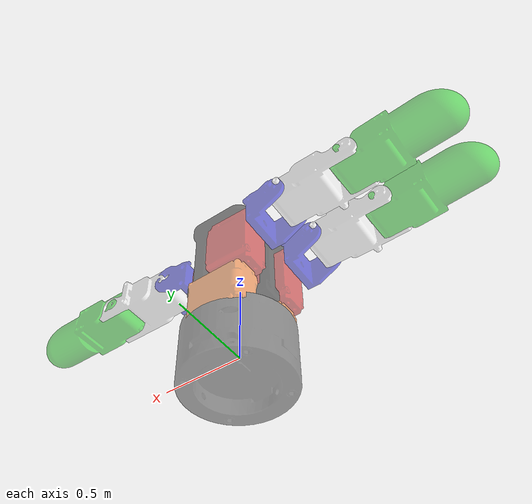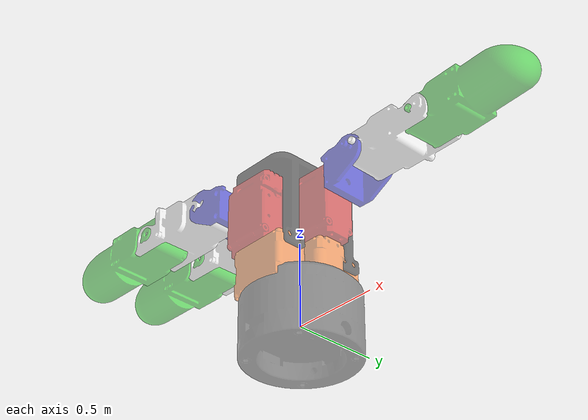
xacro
<?xml version="1.0"?>
<robot name="robot_hand" xmlns:xacro="http://www.ros.org/wiki/xacro">
  <!-- Import Rviz colors -->
  <xacro:include filename="$(find tesollo)/urdf/materials.xacro" />

  <xacro:property name="robot_base_radius" value="0.64"  />
  <xacro:property name="robot_base_length" value="0.405" />

  <xacro:property name="finger_link0_width" value="0.196"/>
  <xacro:property name="finger_link0_length" value="0.358" />
  <xacro:property name="finger_link0_height" value="0.284" />

  <xacro:property name="finger_link1_width" value="0.196" />
  <xacro:property name="finger_link1_length" value="0.284" />
  <xacro:property name="finger_link1_height" value="0.358" />

  <xacro:property name="finger_link3_width" value="0.196" />
  <xacro:property name="finger_link3_length" value="0.284" />
  <xacro:property name="finger_link3_height" value="0.358" />

  <xacro:property name="PI" value="3.14"/>

  <!-- Robot hand base-->
  <link name="base_link">
    <visual>
      <origin xyz="0 0 0" rpy="0 0 ${-1*PI/2}"/>
      <geometry>
        <mesh filename="../meshes/base.stl" scale="0.01 0.01 0.01"/>
      </geometry>
      <material name="grey"/>
    </visual>
  </link>

  <!-- finger_1 -->
  <joint name="finger_1_joint0" type="fixed">
    <origin xyz="${finger_link0_width/2} 0 ${finger_link0_height/2}" rpy="0 0 0" />
    <parent link="base_link"/>
    <child link="finger_1_link0"/>
    <axis xyz="0 0 1"/>
  </joint>

  <!-- motor 1 -->
  <link name="finger_1_link0">
    <visual>
      <origin xyz="0 0 ${finger_link0_height/2}" rpy="0 0 ${1*PI/2}"/>
      <geometry>
        <mesh filename="../meshes/finger0.stl" scale="0.01 0.01 0.01"/>
      </geometry>
      <material name="orange"/>
    </visual>
  </link>

  <joint name="finger_1_joint1" type="revolute">
    <origin xyz="0.07 0 ${finger_link1_length}" rpy="0 0 0" />
    <parent link="finger_1_link0"/>
    <child link="finger_1_link1"/>
    <axis xyz="0 0 1"/>
    <limit effort="1000" lower="-0.785" upper="0.785" velocity="5.027"/>
  </joint>

  <!-- motor 2 -->
  <link name="finger_1_link1">
    <visual>
      <origin xyz="0 0 ${finger_link1_height/2 + 0.04}" rpy="0 0 ${1*PI/2}"/>
      <geometry>
        <mesh filename="../meshes/finger1.stl" scale="0.01 0.01 0.01"/>
      </geometry>
      <material name="red"/>
    </visual>
  </link>

  <joint name="finger_1_joint2" type="revolute">
    <origin xyz="${finger_link1_width/2+0.025} +0.005 ${finger_link1_height-0.065}" rpy="0 ${1*PI/2} 0" />    <!-- add offset -->
    <parent link="finger_1_link1"/>
    <child link="finger_1_link2"/>
    <axis xyz="0 0 1"/>
    <limit effort="1000" lower="-1.57" upper="1.57" velocity="5.027"/>
  </joint>

  <!-- link -->
  <link name="finger_1_link2">
    <visual>
      <origin xyz="-0.05 -0.01 0.1" rpy="0 0 ${1*PI/2}"/> <!-- add offset -->
      <geometry>
        <mesh filename="../meshes/link.stl" scale="0.01 0.01 0.01"/>
      </geometry>
      <material name="blue"/>
    </visual>
  </link>

  <!-- motor 3 -->
  <joint name="finger_1_joint3" type="revolute">
    <origin xyz="-0.1 0 0.2" rpy="${1*PI/2} 0 0" />
    <parent link="finger_1_link2"/>
    <child link="finger_1_link3"/>
    <limit effort="1000" lower="0" upper="1.57" velocity="5.027"/>
    <axis xyz="0 0 1"/>
  </joint>

  <link name="finger_1_link3">
    <visual>
      <origin xyz="0 ${finger_link3_length/2} 0" rpy="${-1*PI/2} ${1*PI/2} 0"/>
      <geometry>
        <mesh filename="../meshes/finger2.stl" scale="0.01 0.01 0.01"/>
      </geometry>
      <material name="white"/>
    </visual>
  </link>

  <!-- motor 4 -->
  <joint name="finger_1_joint4" type="revolute">
    <origin xyz="0 ${finger_link3_height + 0.087} 0" rpy="0 0 0" />
    <parent link="finger_1_link3"/>
    <child link="finger_1_link4"/>
    <limit effort="1000" lower="0" upper="1.57" velocity="5.027"/>
    <axis xyz="0 0 1"/>
  </joint>

  <link name="finger_1_link4">
    <visual>
      <origin xyz="-0.01 0.22 -0.01" rpy="${-1*PI/2} ${1*PI/2} 0"/>
      <geometry>
        <mesh filename="../meshes/finger3.stl" scale="0.01 0.01 0.01"/>
      </geometry>
      <material name="green"/>
    </visual>
  </link>

  <!-- finger_2 -->
  <joint name="finger_2_joint0" type="fixed">
    <origin xyz="-0.05 ${-1*finger_link0_width} ${finger_link0_height/2}" rpy="0 0 ${PI}" />
    <parent link="base_link"/>
    <child link="finger_2_link0"/>
    <axis xyz="0 0 1"/>
  </joint>

  <link name="finger_2_link0">
    <visual>
      <origin xyz="0 0 ${finger_link0_height/2}" rpy="0 0 ${1*PI/2}"/>
      <geometry>
        <mesh filename="../meshes/finger0.stl" scale="0.01 0.01 0.01"/>
      </geometry>
      <material name="orange"/>
    </visual>
  </link>

  <joint name="finger_2_joint1" type="revolute">
    <origin xyz="0.07 0 ${finger_link1_length}" rpy="0 0 0" />
    <parent link="finger_2_link0"/>
    <child link="finger_2_link1"/>
    <axis xyz="0 0 1"/>
    <limit effort="1000" lower="0" upper="0.785" velocity="5.027"/>
  </joint>

  <!-- motor 2 -->
  <link name="finger_2_link1">
    <visual>
      <origin xyz="0 0 ${finger_link1_height/2 + 0.04}" rpy="0 0 ${1*PI/2}"/>
      <geometry>
        <mesh filename="../meshes/finger1.stl" scale="0.01 0.01 0.01"/>
      </geometry>
      <material name="red"/>
    </visual>
  </link>

  <joint name="finger_2_joint2" type="revolute">
    <origin xyz="${finger_link1_width/2+0.025} +0.005 ${finger_link1_height-0.065}" rpy="0 ${1*PI/2} 0" />    <!-- add offset -->
    <parent link="finger_2_link1"/>
    <child link="finger_2_link2"/>
    <axis xyz="0 0 1"/>
    <limit effort="1000" lower="-1.57" upper="1.57" velocity="5.027"/>
  </joint>

  <!-- link -->
  <link name="finger_2_link2">
    <visual>
      <origin xyz="-0.05 -0.01 0.1" rpy="0 0 ${1*PI/2}"/> <!-- add offset -->
      <geometry>
        <mesh filename="../meshes/link.stl" scale="0.01 0.01 0.01"/>
      </geometry>
      <material name="blue"/>
    </visual>
  </link>

  <!-- motor 3 -->
  <joint name="finger_2_joint3" type="revolute">
    <origin xyz="-0.1 0 0.2" rpy="${1*PI/2} 0 0" />
    <parent link="finger_2_link2"/>
    <child link="finger_2_link3"/>
    <limit effort="1000" lower="0" upper="1.57" velocity="5.027"/>
    <axis xyz="0 0 1"/>
  </joint>

  <link name="finger_2_link3">
    <visual>
      <origin xyz="0 ${finger_link3_length/2} 0" rpy="${-1*PI/2} ${1*PI/2} 0"/>
      <geometry>
        <mesh filename="../meshes/finger2.stl" scale="0.01 0.01 0.01"/>
      </geometry>
      <material name="white"/>
    </visual>
  </link>

  <!-- motor 4 -->
  <joint name="finger_2_joint4" type="revolute">
    <origin xyz="0 ${finger_link3_height + 0.087} 0" rpy="0 0 0" />
    <parent link="finger_2_link3"/>
    <child link="finger_2_link4"/>
    <limit effort="1000" lower="0" upper="1.57" velocity="5.027"/>
    <axis xyz="0 0 1"/>
  </joint>

  <link name="finger_2_link4">
    <visual>
      <origin xyz="-0.01 0.22 -0.01" rpy="${-1*PI/2} ${1*PI/2} 0"/>
      <geometry>
        <mesh filename="../meshes/finger3.stl" scale="0.01 0.01 0.01"/>
      </geometry>
      <material name="green"/>
    </visual>
  </link>

  <!-- finger_3 -->
  <joint name="finger_3_joint0" type="fixed">
    <origin xyz="-0.05 ${1*finger_link0_width} ${finger_link0_height/2}" rpy="0 0 ${PI}" />
    <parent link="base_link"/>
    <child link="finger_3_link0"/>
    <axis xyz="0 0 1"/>
  </joint>

  <link name="finger_3_link0">
    <visual>
      <origin xyz="0 0 ${finger_link0_height/2}" rpy="0 0 ${1*PI/2}"/>
      <geometry>
        <mesh filename="../meshes/finger0.stl" scale="0.01 0.01 0.01"/>
      </geometry>
      <material name="orange"/>
    </visual>
  </link>

  <joint name="finger_3_joint1" type="revolute">
    <origin xyz="0.07 0 ${finger_link1_length}" rpy="0 0 0" />
    <parent link="finger_3_link0"/>
    <child link="finger_3_link1"/>
    <axis xyz="0 0 1"/>
    <limit effort="1000" lower="-0.785" upper="0" velocity="5.027"/>
  </joint>

  <!-- motor 2 -->
  <link name="finger_3_link1">
    <visual>
      <origin xyz="0 0 ${finger_link1_height/2 + 0.04}" rpy="0 0 ${1*PI/2}"/>
      <geometry>
        <mesh filename="../meshes/finger1.stl" scale="0.01 0.01 0.01"/>
      </geometry>
      <material name="red"/>
    </visual>
  </link>

  <joint name="finger_3_joint2" type="revolute">
    <origin xyz="${finger_link1_width/2+0.025} +0.005 ${finger_link1_height-0.065}" rpy="0 ${1*PI/2} 0" />    <!-- add offset -->
    <parent link="finger_3_link1"/>
    <child link="finger_3_link2"/>
    <axis xyz="0 0 1"/>
    <limit effort="1000" lower="-1.57" upper="1.57" velocity="5.027"/>
  </joint>

  <!-- link -->
  <link name="finger_3_link2">
    <visual>
      <origin xyz="-0.05 -0.01 0.1" rpy="0 0 ${1*PI/2}"/> <!-- add offset -->
      <geometry>
        <mesh filename="../meshes/link.stl" scale="0.01 0.01 0.01"/>
      </geometry>
      <material name="blue"/>
    </visual>
  </link>

  <!-- motor 3 -->
  <joint name="finger_3_joint3" type="revolute">
    <origin xyz="-0.1 0 0.2" rpy="${1*PI/2} 0 0" />
    <parent link="finger_3_link2"/>
    <child link="finger_3_link3"/>
    <limit effort="1000" lower="0" upper="1.57" velocity="5.027"/>
    <axis xyz="0 0 1"/>
  </joint>

  <link name="finger_3_link3">
    <visual>
      <origin xyz="0 ${finger_link3_length/2} 0" rpy="${-1*PI/2} ${1*PI/2} 0"/>
      <geometry>
        <mesh filename="../meshes/finger2.stl" scale="0.01 0.01 0.01"/>
      </geometry>
      <material name="white"/>
    </visual>
  </link>

  <!-- motor 4 -->
  <joint name="finger_3_joint4" type="revolute">
    <origin xyz="0 ${finger_link3_height + 0.087} 0" rpy="0 0 0" />
    <parent link="finger_3_link3"/>
    <child link="finger_3_link4"/>
    <limit effort="1000" lower="0" upper="1.57" velocity="5.027"/>
    <axis xyz="0 0 1"/>
  </joint>

  <link name="finger_3_link4">
    <visual>
      <origin xyz="-0.01 0.22 -0.01" rpy="${-1*PI/2} ${1*PI/2} 0"/>
      <geometry>
        <mesh filename="../meshes/finger3.stl" scale="0.01 0.01 0.01"/>
      </geometry>
      <material name="green"/>
    </visual>
  </link>

  <!-- hand palm -->
  <joint name="palm_joint" type="fixed">
    <origin xyz="0 0 0.7" rpy="0 0 0" />
    <parent link="base_link"/>
    <child link="palm_link"/>
    <axis xyz="0 0 1"/>
  </joint>

  <link name="palm_link">
    <visual>
      <origin xyz="0 0 0" rpy="0 0 ${-1 * PI/2}"/>
      <geometry>
        <mesh filename="../meshes/housing.stl" scale="0.01 0.01 0.01"/>
      </geometry>
      <material name="black"/>
    </visual>
  </link>

</robot>

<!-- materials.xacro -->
<robot>

  <material name="black">
    <color rgba="0.0 0.0 0.0 0.5"/>
  </material>

  <material name="blue">
    <color rgba="0.0 0.0 0.8 0.5"/>
  </material>

  <material name="green">
    <color rgba="0.0 0.8 0.0 0.5"/>
  </material>

  <material name="grey">
    <color rgba="0.2 0.2 0.2 0.5"/>
  </material>

  <material name="orange">
    <color rgba="${255/255} ${108/255} ${10/255} 0.5"/>
  </material>

  <material name="brown">
    <color rgba="${222/255} ${207/255} ${195/255} 0.5"/>
  </material>

  <material name="red">
    <color rgba="0.8 0.0 0.0 0.5"/>
  </material>

  <material name="white">
    <color rgba="1.0 1.0 1.0 0.5"/>
  </material>

  <material name="puple">
    <color rgba="0.8 0.0 0.8 0.5"/>
  </material>

  <material name="yellow">
    <color rgba="0.8 0.8 0.0 0.5"/>
  </material>
</robot>
